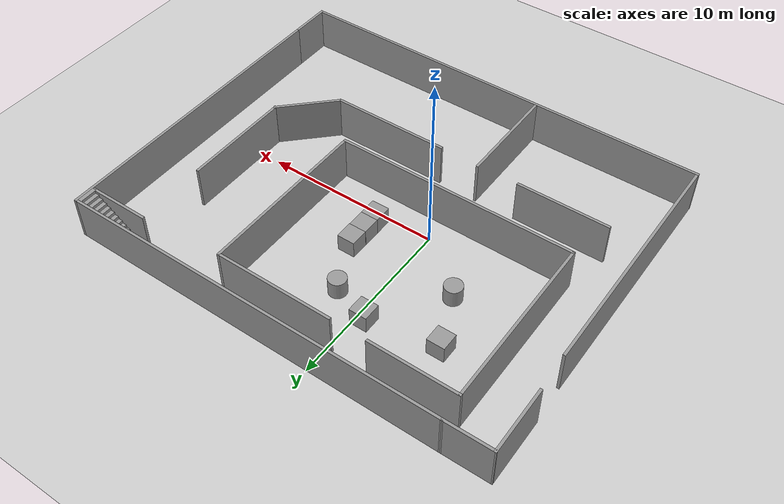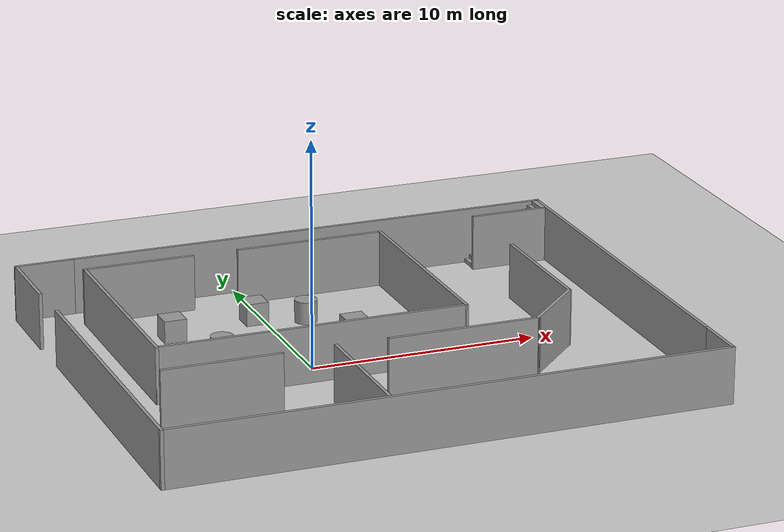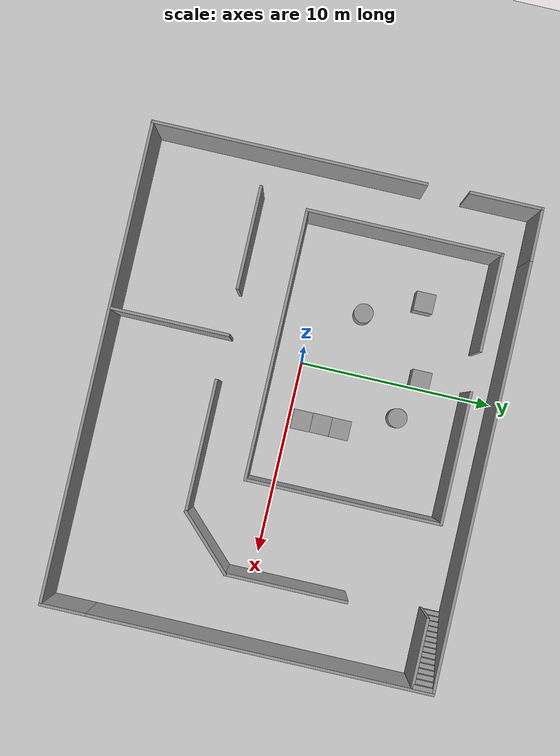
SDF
<sdf version="1.7">
 <world name="default">
  <model name="ground_plane">
   <static>1</static>
   <link name="link">
    <collision name="collision">
     <geometry><plane><normal>0 0 1</normal><size>100 100</size></plane></geometry>
     <surface>
      <contact><collide_bitmask>65535</collide_bitmask></contact>
      <friction><ode><mu>100</mu><mu2>50</mu2></ode></friction>
     </surface>
    </collision>
    <visual name="visual">
     <cast_shadows>0</cast_shadows>
     <geometry><plane><normal>0 0 1</normal><size>100 100</size></plane></geometry>
     <material>
      <script><uri>file://media/materials/scripts/gazebo.material</uri><name>Gazebo/Grey</name></script>
     </material>
    </visual>
   </link>
  </model>
  <model name="myworld1">
   <pose>2.32921 0.049771 0 0 -0 0</pose>
   <link name="Stairs_0">
    <visual name="Stairs_0_Visual_0">
     <pose>8.76424 9.2881 0.083333 0 -0 1.5708</pose>
     <geometry><box><size>1 0.233333 0.166667</size></box></geometry>
     <material>
      <script><uri>file://media/materials/scripts/gazebo.material</uri><name>Gazebo/Grey</name></script>
      <ambient>1 1 1 1</ambient>
     </material>
     <meta><layer>0</layer></meta>
    </visual>
    <collision name="Stairs_0_Collision_0">
     <geometry><box><size>1 0.233333 0.166667</size></box></geometry>
     <pose>8.76424 9.2881 0.083333 0 -0 1.5708</pose>
    </collision>
    <visual name="Stairs_0_Visual_1">
     <pose>8.99757 9.2881 0.25 0 -0 1.5708</pose>
     <geometry><box><size>1 0.233333 0.166667</size></box></geometry>
     <material>
      <script><uri>file://media/materials/scripts/gazebo.material</uri><name>Gazebo/Grey</name></script>
      <ambient>1 1 1 1</ambient>
     </material>
     <meta><layer>0</layer></meta>
    </visual>
    <collision name="Stairs_0_Collision_1">
     <geometry><box><size>1 0.233333 0.166667</size></box></geometry>
     <pose>8.99757 9.2881 0.25 0 -0 1.5708</pose>
    </collision>
    <visual name="Stairs_0_Visual_2">
     <pose>9.23091 9.2881 0.416667 0 -0 1.5708</pose>
     <geometry><box><size>1 0.233333 0.166667</size></box></geometry>
     <material>
      <script><uri>file://media/materials/scripts/gazebo.material</uri><name>Gazebo/Grey</name></script>
      <ambient>1 1 1 1</ambient>
     </material>
     <meta><layer>0</layer></meta>
    </visual>
    <collision name="Stairs_0_Collision_2">
     <geometry><box><size>1 0.233333 0.166667</size></box></geometry>
     <pose>9.23091 9.2881 0.416667 0 -0 1.5708</pose>
    </collision>
    <visual name="Stairs_0_Visual_3">
     <pose>9.46424 9.2881 0.583333 0 -0 1.5708</pose>
     <geometry><box><size>1 0.233333 0.166667</size></box></geometry>
     <material>
      <script><uri>file://media/materials/scripts/gazebo.material</uri><name>Gazebo/Grey</name></script>
      <ambient>1 1 1 1</ambient>
     </material>
     <meta><layer>0</layer></meta>
    </visual>
    <collision name="Stairs_0_Collision_3">
     <geometry><box><size>1 0.233333 0.166667</size></box></geometry>
     <pose>9.46424 9.2881 0.583333 0 -0 1.5708</pose>
    </collision>
    <visual name="Stairs_0_Visual_4">
     <pose>9.69758 9.2881 0.75 0 -0 1.5708</pose>
     <geometry><box><size>1 0.233333 0.166667</size></box></geometry>
     <material>
      <script><uri>file://media/materials/scripts/gazebo.material</uri><name>Gazebo/Grey</name></script>
      <ambient>1 1 1 1</ambient>
     </material>
     <meta><layer>0</layer></meta>
    </visual>
    <collision name="Stairs_0_Collision_4">
     <geometry><box><size>1 0.233333 0.166667</size></box></geometry>
     <pose>9.69758 9.2881 0.75 0 -0 1.5708</pose>
    </collision>
    <visual name="Stairs_0_Visual_5">
     <pose>9.93091 9.2881 0.916667 0 -0 1.5708</pose>
     <geometry><box><size>1 0.233333 0.166667</size></box></geometry>
     <material>
      <script><uri>file://media/materials/scripts/gazebo.material</uri><name>Gazebo/Grey</name></script>
      <ambient>1 1 1 1</ambient>
     </material>
     <meta><layer>0</layer></meta>
    </visual>
    <collision name="Stairs_0_Collision_5">
     <geometry><box><size>1 0.233333 0.166667</size></box></geometry>
     <pose>9.93091 9.2881 0.916667 0 -0 1.5708</pose>
    </collision>
    <visual name="Stairs_0_Visual_6">
     <pose>10.1642 9.2881 1.08333 0 -0 1.5708</pose>
     <geometry><box><size>1 0.233333 0.166667</size></box></geometry>
     <material>
      <script><uri>file://media/materials/scripts/gazebo.material</uri><name>Gazebo/Grey</name></script>
      <ambient>1 1 1 1</ambient>
     </material>
     <meta><layer>0</layer></meta>
    </visual>
    <collision name="Stairs_0_Collision_6">
     <geometry><box><size>1 0.233333 0.166667</size></box></geometry>
     <pose>10.1642 9.2881 1.08333 0 -0 1.5708</pose>
    </collision>
    <visual name="Stairs_0_Visual_7">
     <pose>10.3976 9.2881 1.25 0 -0 1.5708</pose>
     <geometry><box><size>1 0.233333 0.166667</size></box></geometry>
     <material>
      <script><uri>file://media/materials/scripts/gazebo.material</uri><name>Gazebo/Grey</name></script>
      <ambient>1 1 1 1</ambient>
     </material>
     <meta><layer>0</layer></meta>
    </visual>
    <collision name="Stairs_0_Collision_7">
     <geometry><box><size>1 0.233333 0.166667</size></box></geometry>
     <pose>10.3976 9.2881 1.25 0 -0 1.5708</pose>
    </collision>
    <visual name="Stairs_0_Visual_8">
     <pose>10.6309 9.2881 1.41667 0 -0 1.5708</pose>
     <geometry><box><size>1 0.233333 0.166667</size></box></geometry>
     <material>
      <script><uri>file://media/materials/scripts/gazebo.material</uri><name>Gazebo/Grey</name></script>
      <ambient>1 1 1 1</ambient>
     </material>
     <meta><layer>0</layer></meta>
    </visual>
    <collision name="Stairs_0_Collision_8">
     <geometry><box><size>1 0.233333 0.166667</size></box></geometry>
     <pose>10.6309 9.2881 1.41667 0 -0 1.5708</pose>
    </collision>
    <visual name="Stairs_0_Visual_9">
     <pose>10.8642 9.2881 1.58333 0 -0 1.5708</pose>
     <geometry><box><size>1 0.233333 0.166667</size></box></geometry>
     <material>
      <script><uri>file://media/materials/scripts/gazebo.material</uri><name>Gazebo/Grey</name></script>
      <ambient>1 1 1 1</ambient>
     </material>
     <meta><layer>0</layer></meta>
    </visual>
    <collision name="Stairs_0_Collision_9">
     <geometry><box><size>1 0.233333 0.166667</size></box></geometry>
     <pose>10.8642 9.2881 1.58333 0 -0 1.5708</pose>
    </collision>
    <visual name="Stairs_0_Visual_10">
     <pose>11.0976 9.2881 1.75 0 -0 1.5708</pose>
     <geometry><box><size>1 0.233333 0.166667</size></box></geometry>
     <material>
      <script><uri>file://media/materials/scripts/gazebo.material</uri><name>Gazebo/Grey</name></script>
      <ambient>1 1 1 1</ambient>
     </material>
     <meta><layer>0</layer></meta>
    </visual>
    <collision name="Stairs_0_Collision_10">
     <geometry><box><size>1 0.233333 0.166667</size></box></geometry>
     <pose>11.0976 9.2881 1.75 0 -0 1.5708</pose>
    </collision>
    <visual name="Stairs_0_Visual_11">
     <pose>11.3309 9.2881 1.91667 0 -0 1.5708</pose>
     <geometry><box><size>1 0.233333 0.166667</size></box></geometry>
     <material>
      <script><uri>file://media/materials/scripts/gazebo.material</uri><name>Gazebo/Grey</name></script>
      <ambient>1 1 1 1</ambient>
     </material>
     <meta><layer>0</layer></meta>
    </visual>
    <collision name="Stairs_0_Collision_11">
     <geometry><box><size>1 0.233333 0.166667</size></box></geometry>
     <pose>11.3309 9.2881 1.91667 0 -0 1.5708</pose>
    </collision>
    <visual name="Stairs_0_Visual_12">
     <pose>11.5642 9.2881 2.08333 0 -0 1.5708</pose>
     <geometry><box><size>1 0.233333 0.166667</size></box></geometry>
     <material>
      <script><uri>file://media/materials/scripts/gazebo.material</uri><name>Gazebo/Grey</name></script>
      <ambient>1 1 1 1</ambient>
     </material>
     <meta><layer>0</layer></meta>
    </visual>
    <collision name="Stairs_0_Collision_12">
     <geometry><box><size>1 0.233333 0.166667</size></box></geometry>
     <pose>11.5642 9.2881 2.08333 0 -0 1.5708</pose>
    </collision>
    <visual name="Stairs_0_Visual_13">
     <pose>11.7976 9.2881 2.25 0 -0 1.5708</pose>
     <geometry><box><size>1 0.233333 0.166667</size></box></geometry>
     <material>
      <script><uri>file://media/materials/scripts/gazebo.material</uri><name>Gazebo/Grey</name></script>
      <ambient>1 1 1 1</ambient>
     </material>
     <meta><layer>0</layer></meta>
    </visual>
    <collision name="Stairs_0_Collision_13">
     <geometry><box><size>1 0.233333 0.166667</size></box></geometry>
     <pose>11.7976 9.2881 2.25 0 -0 1.5708</pose>
    </collision>
    <visual name="Stairs_0_Visual_14">
     <pose>12.0309 9.2881 2.41667 0 -0 1.5708</pose>
     <geometry><box><size>1 0.233333 0.166667</size></box></geometry>
     <material>
      <script><uri>file://media/materials/scripts/gazebo.material</uri><name>Gazebo/Grey</name></script>
      <ambient>1 1 1 1</ambient>
     </material>
     <meta><layer>0</layer></meta>
    </visual>
    <collision name="Stairs_0_Collision_14">
     <geometry><box><size>1 0.233333 0.166667</size></box></geometry>
     <pose>12.0309 9.2881 2.41667 0 -0 1.5708</pose>
    </collision>
   </link>
   <link name="Wall_11">
    <collision name="Wall_11_Collision">
     <geometry><box><size>22 0.15 2.5</size></box></geometry>
     <pose>0 0 1.25 0 -0 0</pose>
    </collision>
    <visual name="Wall_11_Visual">
     <pose>0 0 1.25 0 -0 0</pose>
     <geometry><box><size>22 0.15 2.5</size></box></geometry>
     <material>
      <script><uri>file://media/materials/scripts/gazebo.material</uri><name>Gazebo/Grey</name></script>
      <ambient>1 1 1 1</ambient>
     </material>
     <meta><layer>0</layer></meta>
    </visual>
    <pose>1.28756 9.8497 0 0 -0 0</pose>
   </link>
   <link name="Wall_12">
    <collision name="Wall_12_Collision">
     <geometry><box><size>17.5 0.15 2.5</size></box></geometry>
     <pose>0 0 1.25 0 -0 0</pose>
    </collision>
    <visual name="Wall_12_Visual">
     <pose>0 0 1.25 0 -0 0</pose>
     <geometry><box><size>17.5 0.15 2.5</size></box></geometry>
     <material>
      <script><uri>file://media/materials/scripts/gazebo.material</uri><name>Gazebo/Grey</name></script>
      <ambient>1 1 1 1</ambient>
     </material>
     <meta><layer>0</layer></meta>
    </visual>
    <pose>12.2126 1.1747 0 0 -0 -1.5708</pose>
   </link>
   <link name="Wall_13">
    <collision name="Wall_13_Collision">
     <geometry><box><size>2.5 0.15 2.5</size></box></geometry>
     <pose>0 0 1.25 0 -0 0</pose>
    </collision>
    <visual name="Wall_13_Visual">
     <pose>0 0 1.25 0 -0 0</pose>
     <geometry><box><size>2.5 0.15 2.5</size></box></geometry>
     <material>
      <script><uri>file://media/materials/scripts/gazebo.material</uri><name>Gazebo/Grey</name></script>
      <ambient>1 1 1 1</ambient>
     </material>
     <meta><layer>0</layer></meta>
    </visual>
    <pose>12.2126 -8.6753 0 0 -0 -1.5708</pose>
   </link>
   <link name="Wall_14">
    <collision name="Wall_14_Collision">
     <geometry><box><size>24.5 0.15 2.5</size></box></geometry>
     <pose>0 0 1.25 0 -0 0</pose>
    </collision>
    <visual name="Wall_14_Visual">
     <pose>0 0 1.25 0 -0 0</pose>
     <geometry><box><size>24.5 0.15 2.5</size></box></geometry>
     <material>
      <script><uri>file://media/materials/scripts/gazebo.material</uri><name>Gazebo/Grey</name></script>
      <ambient>1 1 1 1</ambient>
     </material>
     <meta><layer>0</layer></meta>
    </visual>
    <pose>0.037564 -9.8503 0 0 -0 3.14159</pose>
   </link>
   <link name="Wall_15">
    <collision name="Wall_15_Collision">
     <geometry><box><size>14 0.15 2.5</size></box></geometry>
     <pose>0 0 1.25 0 -0 0</pose>
    </collision>
    <visual name="Wall_15_Visual">
     <pose>0 0 1.25 0 -0 0</pose>
     <geometry><box><size>14 0.15 2.5</size></box></geometry>
     <material>
      <script><uri>file://media/materials/scripts/gazebo.material</uri><name>Gazebo/Grey</name></script>
      <ambient>1 1 1 1</ambient>
     </material>
     <meta><layer>0</layer></meta>
    </visual>
    <pose>-12.1374 -2.9253 0 0 -0 1.5708</pose>
   </link>
   <link name="Wall_17">
    <collision name="Wall_17_Collision">
     <geometry><box><size>3.75 0.15 2.5</size></box></geometry>
     <pose>0 0 1.25 0 -0 0</pose>
    </collision>
    <visual name="Wall_17_Visual">
     <pose>0 0 1.25 0 -0 0</pose>
     <geometry><box><size>3.75 0.15 2.5</size></box></geometry>
     <material>
      <script><uri>file://media/materials/scripts/gazebo.material</uri><name>Gazebo/Grey</name></script>
      <ambient>1 1 1 1</ambient>
     </material>
     <meta><layer>0</layer></meta>
    </visual>
    <pose>-12.212 8.02926 0 0 -0 1.5708</pose>
   </link>
   <link name="Wall_18">
    <collision name="Wall_18_Collision">
     <geometry><box><size>2.72462 0.15 2.5</size></box></geometry>
     <pose>0 0 1.25 0 -0 0</pose>
    </collision>
    <visual name="Wall_18_Visual">
     <pose>0 0 1.25 0 -0 0</pose>
     <geometry><box><size>2.72462 0.15 2.5</size></box></geometry>
     <material>
      <script><uri>file://media/materials/scripts/gazebo.material</uri><name>Gazebo/Grey</name></script>
      <ambient>1 1 1 1</ambient>
     </material>
     <meta><layer>0</layer></meta>
    </visual>
    <pose>-10.9247 9.83948 0 0 -0 0.00794</pose>
   </link>
   <link name="Wall_20">
    <collision name="Wall_20_Collision">
     <geometry><box><size>5.25 0.15 2.5</size></box></geometry>
     <pose>0 0 1.25 0 -0 0</pose>
    </collision>
    <visual name="Wall_20_Visual">
     <pose>0 0 1.25 0 -0 0</pose>
     <geometry><box><size>5.25 0.15 2.5</size></box></geometry>
     <material>
      <script><uri>file://media/materials/scripts/gazebo.material</uri><name>Gazebo/Grey</name></script>
      <ambient>1 1 1 1</ambient>
     </material>
     <meta><layer>0</layer></meta>
    </visual>
    <pose>-7.6305 -3.92809 0 0 -0 0</pose>
   </link>
   <link name="Wall_22">
    <collision name="Wall_22_Collision">
     <geometry><box><size>6 0.15 2.5</size></box></geometry>
     <pose>0 0 1.25 0 -0 0</pose>
    </collision>
    <visual name="Wall_22_Visual">
     <pose>0 0 1.25 0 -0 0</pose>
     <geometry><box><size>6 0.15 2.5</size></box></geometry>
     <material>
      <script><uri>file://media/materials/scripts/gazebo.material</uri><name>Gazebo/Grey</name></script>
      <ambient>1 1 1 1</ambient>
     </material>
     <meta><layer>0</layer></meta>
    </visual>
    <pose>-2.69825 -6.79275 0 0 -0 -1.5708</pose>
   </link>
   <link name="Wall_24">
    <collision name="Wall_24_Collision">
     <geometry><box><size>3.5 0.15 2.5</size></box></geometry>
     <pose>0 0 1.25 0 -0 0</pose>
    </collision>
    <visual name="Wall_24_Visual">
     <pose>0 0 1.25 0 -0 0</pose>
     <geometry><box><size>3.5 0.15 2.5</size></box></geometry>
     <material>
      <script><uri>file://media/materials/scripts/gazebo.material</uri><name>Gazebo/Grey</name></script>
      <ambient>1 1 1 1</ambient>
     </material>
     <meta><layer>0</layer></meta>
    </visual>
    <pose>10.3611 8.78752 0 0 -0 0</pose>
   </link>
   <link name="Wall_26">
    <collision name="Wall_26_Collision">
     <geometry><box><size>6.75 0.15 2.5</size></box></geometry>
     <pose>0 0 1.25 0 -0 0</pose>
    </collision>
    <visual name="Wall_26_Visual">
     <pose>0 0 1.25 0 -0 0</pose>
     <geometry><box><size>6.75 0.15 2.5</size></box></geometry>
     <material>
      <script><uri>file://media/materials/scripts/gazebo.material</uri><name>Gazebo/Grey</name></script>
      <ambient>1 1 1 1</ambient>
     </material>
     <meta><layer>0</layer></meta>
    </visual>
    <pose>2.9149 -3.92426 0 0 -0 0</pose>
   </link>
   <link name="Wall_27">
    <collision name="Wall_27_Collision">
     <geometry><box><size>3.75 0.15 2.5</size></box></geometry>
     <pose>0 0 1.25 0 -0 0</pose>
    </collision>
    <visual name="Wall_27_Visual">
     <pose>0 0 1.25 0 -0 0</pose>
     <geometry><box><size>3.75 0.15 2.5</size></box></geometry>
     <material>
      <script><uri>file://media/materials/scripts/gazebo.material</uri><name>Gazebo/Grey</name></script>
      <ambient>1 1 1 1</ambient>
     </material>
     <meta><layer>0</layer></meta>
    </visual>
    <pose>7.4877 -2.65146 0 0 -0 0.785398</pose>
   </link>
   <link name="Wall_28">
    <collision name="Wall_28_Collision">
     <geometry><box><size>6.25 0.15 2.5</size></box></geometry>
     <pose>0 0 1.25 0 -0 0</pose>
    </collision>
    <visual name="Wall_28_Visual">
     <pose>0 0 1.25 0 -0 0</pose>
     <geometry><box><size>6.25 0.15 2.5</size></box></geometry>
     <material>
      <script><uri>file://media/materials/scripts/gazebo.material</uri><name>Gazebo/Grey</name></script>
      <ambient>1 1 1 1</ambient>
     </material>
     <meta><layer>0</layer></meta>
    </visual>
    <pose>8.76049 1.67133 0 0 -0 1.5708</pose>
   </link>
   <link name="Wall_4">
    <collision name="Wall_4_Collision">
     <geometry><box><size>5 0.15 2.5</size></box></geometry>
     <pose>0 0 1.25 0 -0 0</pose>
    </collision>
    <visual name="Wall_4_Visual">
     <pose>0 0 1.25 0 -0 0</pose>
     <geometry><box><size>5 0.15 2.5</size></box></geometry>
     <material>
      <script><uri>file://media/materials/scripts/gazebo.material</uri><name>Gazebo/Grey</name></script>
      <ambient>1 1 1 1</ambient>
     </material>
     <meta><layer>0</layer></meta>
    </visual>
    <pose>-7.1521 8.40153 0 0 -0 0</pose>
   </link>
   <link name="Wall_6">
    <collision name="Wall_6_Collision">
     <geometry><box><size>10 0.15 2.5</size></box></geometry>
     <pose>0 0 1.25 0 -0 0</pose>
    </collision>
    <visual name="Wall_6_Visual">
     <pose>0 0 1.25 0 -0 0</pose>
     <geometry><box><size>10 0.15 2.5</size></box></geometry>
     <material>
      <script><uri>file://media/materials/scripts/gazebo.material</uri><name>Gazebo/Grey</name></script>
      <ambient>1 1 1 1</ambient>
     </material>
     <meta><layer>0</layer></meta>
    </visual>
    <pose>-9.57709 3.47653 0 0 -0 -1.5708</pose>
   </link>
   <link name="Wall_7">
    <collision name="Wall_7_Collision">
     <geometry><box><size>13.75 0.15 2.5</size></box></geometry>
     <pose>0 0 1.25 0 -0 0</pose>
    </collision>
    <visual name="Wall_7_Visual">
     <pose>0 0 1.25 0 -0 0</pose>
     <geometry><box><size>13.75 0.15 2.5</size></box></geometry>
     <material>
      <script><uri>file://media/materials/scripts/gazebo.material</uri><name>Gazebo/Grey</name></script>
      <ambient>1 1 1 1</ambient>
     </material>
     <meta><layer>0</layer></meta>
    </visual>
    <pose>-2.7771 -1.44847 0 0 -0 0</pose>
   </link>
   <link name="Wall_8">
    <collision name="Wall_8_Collision">
     <geometry><box><size>10 0.15 2.5</size></box></geometry>
     <pose>0 0 1.25 0 -0 0</pose>
    </collision>
    <visual name="Wall_8_Visual">
     <pose>0 0 1.25 0 -0 0</pose>
     <geometry><box><size>10 0.15 2.5</size></box></geometry>
     <material>
      <script><uri>file://media/materials/scripts/gazebo.material</uri><name>Gazebo/Grey</name></script>
      <ambient>1 1 1 1</ambient>
     </material>
     <meta><layer>0</layer></meta>
    </visual>
    <pose>4.0229 3.47653 0 0 -0 1.5708</pose>
   </link>
   <link name="Wall_9">
    <collision name="Wall_9_Collision">
     <geometry><box><size>6.75 0.15 2.5</size></box></geometry>
     <pose>0 0 1.25 0 -0 0</pose>
    </collision>
    <visual name="Wall_9_Visual">
     <pose>0 0 1.25 0 -0 0</pose>
     <geometry><box><size>6.75 0.15 2.5</size></box></geometry>
     <material>
      <script><uri>file://media/materials/scripts/gazebo.material</uri><name>Gazebo/Grey</name></script>
      <ambient>1 1 1 1</ambient>
     </material>
     <meta><layer>0</layer></meta>
    </visual>
    <pose>0.722905 8.40153 0 0 -0 3.14159</pose>
   </link>
   <static>1</static>
  </model>
  <model name="unit_box">
   <pose>-4.34312 5.43266 0.499995 0 1e-05 0</pose>
   <link name="link">
    <inertial>
     <mass>1</mass>
     <inertia>
      <ixx>0.166667</ixx>
      <ixy>0</ixy>
      <ixz>0</ixz>
      <iyy>0.166667</iyy>
      <iyz>0</iyz>
      <izz>0.166667</izz>
     </inertia>
    </inertial>
    <collision name="collision"><geometry><box><size>1 1 1</size></box></geometry></collision>
    <visual name="visual">
     <geometry><box><size>1 1 1</size></box></geometry>
     <material>
      <script><name>Gazebo/Grey</name><uri>file://media/materials/scripts/gazebo.material</uri></script>
     </material>
    </visual>
   </link>
  </model>
  <model name="unit_cylinder">
   <pose>-3.10694 2.52213 0.499998 3e-06 -4e-06 0</pose>
   <link name="link">
    <inertial>
     <mass>1</mass>
     <inertia><ixx>0.145833</ixx><ixy>0</ixy><ixz>0</ixz><iyy>0.145833</iyy><iyz>0</iyz><izz>0.125</izz></inertia>
    </inertial>
    <collision name="collision">
     <geometry><cylinder><radius>0.5</radius><length>1</length></cylinder></geometry>
    </collision>
    <visual name="visual">
     <geometry><cylinder><radius>0.5</radius><length>1</length></cylinder></geometry>
     <material>
      <script><name>Gazebo/Grey</name><uri>file://media/materials/scripts/gazebo.material</uri></script>
     </material>
    </visual>
   </link>
  </model>
  <model name="unit_cylinder_0">
   <pose>1.71423 5.38499 0.499992 -3e-06 -4e-06 -0</pose>
   <link name="link">
    <inertial>
     <mass>1</mass>
     <inertia><ixx>0.145833</ixx><ixy>0</ixy><ixz>0</ixz><iyy>0.145833</iyy><iyz>0</iyz><izz>0.125</izz></inertia>
    </inertial>
    <collision name="collision">
     <geometry><cylinder><radius>0.5</radius><length>1</length></cylinder></geometry>
    </collision>
    <visual name="visual">
     <geometry><cylinder><radius>0.5</radius><length>1</length></cylinder></geometry>
     <material>
      <script><name>Gazebo/Grey</name><uri>file://media/materials/scripts/gazebo.material</uri></script>
     </material>
    </visual>
   </link>
  </model>
  <model name="unit_box_0">
   <pose>-0.411833 6.11184 0.499995 -1e-05 -0 -0</pose>
   <link name="link">
    <inertial>
     <mass>1</mass>
     <inertia>
      <ixx>0.166667</ixx>
      <ixy>0</ixy>
      <ixz>0</ixz>
      <iyy>0.166667</iyy>
      <iyz>0</iyz>
      <izz>0.166667</izz>
     </inertia>
    </inertial>
    <collision name="collision"><geometry><box><size>1 1 1</size></box></geometry></collision>
    <visual name="visual">
     <geometry><box><size>1 1 1</size></box></geometry>
     <material>
      <script><name>Gazebo/Grey</name><uri>file://media/materials/scripts/gazebo.material</uri></script>
     </material>
    </visual>
   </link>
  </model>
  <model name="unit_box_1">
   <pose>2.9109 0.667336 0.5 0 -0 0.000328</pose>
   <link name="link">
    <inertial>
     <mass>1</mass>
     <inertia>
      <ixx>0.166667</ixx>
      <ixy>0</ixy>
      <ixz>0</ixz>
      <iyy>0.166667</iyy>
      <iyz>0</iyz>
      <izz>0.166667</izz>
     </inertia>
    </inertial>
    <collision name="collision"><geometry><box><size>1 1 1</size></box></geometry></collision>
    <visual name="visual">
     <geometry><box><size>1 1 1</size></box></geometry>
     <material>
      <script><name>Gazebo/Grey</name><uri>file://media/materials/scripts/gazebo.material</uri></script>
     </material>
    </visual>
   </link>
  </model>
  <model name="unit_box_2">
   <pose>2.90188 1.66747 0.499995 -0 -1e-05 0.00022</pose>
   <link name="link">
    <inertial>
     <mass>1</mass>
     <inertia>
      <ixx>0.166667</ixx>
      <ixy>0</ixy>
      <ixz>0</ixz>
      <iyy>0.166667</iyy>
      <iyz>0</iyz>
      <izz>0.166667</izz>
     </inertia>
    </inertial>
    <collision name="collision"><geometry><box><size>1 1 1</size></box></geometry></collision>
    <visual name="visual">
     <geometry><box><size>1 1 1</size></box></geometry>
     <material>
      <script><name>Gazebo/Grey</name><uri>file://media/materials/scripts/gazebo.material</uri></script>
     </material>
    </visual>
   </link>
  </model>
  <model name="unit_box_3">
   <pose>2.90948 2.6675 0.5 0 -0 0.000213</pose>
   <link name="link">
    <inertial>
     <mass>1</mass>
     <inertia>
      <ixx>0.166667</ixx>
      <ixy>0</ixy>
      <ixz>0</ixz>
      <iyy>0.166667</iyy>
      <iyz>0</iyz>
      <izz>0.166667</izz>
     </inertia>
    </inertial>
    <collision name="collision"><geometry><box><size>1 1 1</size></box></geometry></collision>
    <visual name="visual">
     <geometry><box><size>1 1 1</size></box></geometry>
     <material>
      <script><name>Gazebo/Grey</name><uri>file://media/materials/scripts/gazebo.material</uri></script>
     </material>
    </visual>
   </link>
  </model>
 </world>
</sdf>
